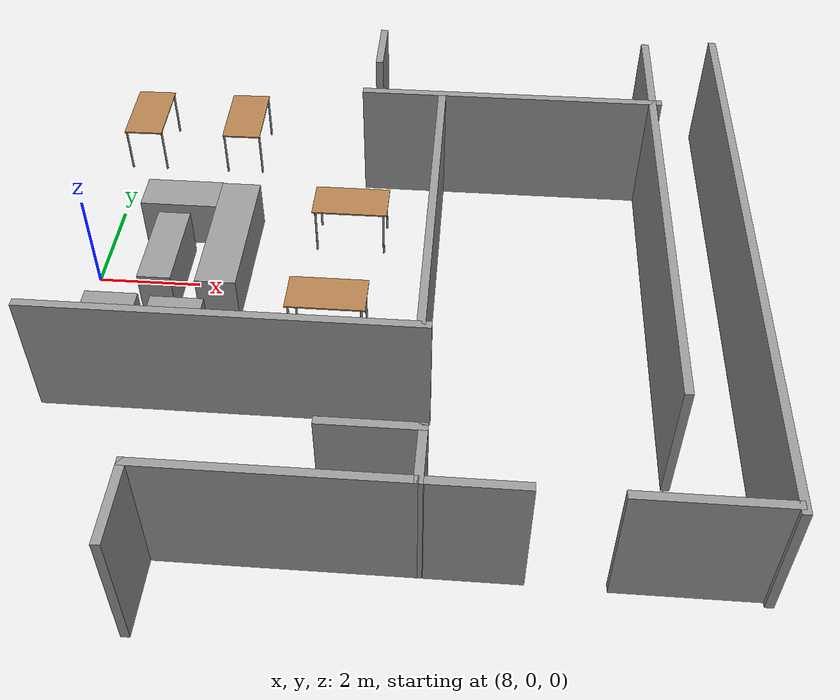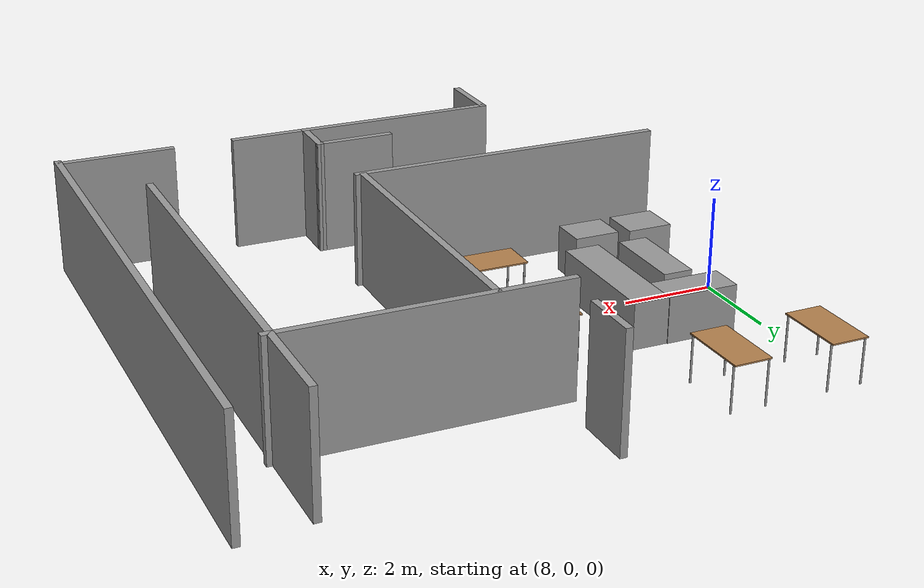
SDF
<sdf version="1.7">
 <model name="turtlebot3_world_V3">
  <link name="link_12">
   <inertial>
    <mass>0.805498</mass>
    <inertia>
     <ixx>0.110674</ixx>
     <ixy>0</ixy>
     <ixz>0</ixz>
     <iyy>0.13425</iyy>
     <iyz>0</iyz>
     <izz>0.110673</izz>
    </inertia>
   </inertial>
   <pose>9.96641 -1.75316 0.5 0 -0 0</pose>
   <visual name="visual">
    <geometry><box><size>1 0.805462 1</size></box></geometry>
    <material>
     <lighting>1</lighting>
     <script><uri>file://media/materials/scripts/gazebo.material</uri><name>Gazebo/Grey</name></script>
     <shader type="pixel"/>
    </material>
   </visual>
   <collision name="collision">
    <geometry><box><size>1 0.805462 1</size></box></geometry>
    <surface>
     <friction>
      <ode><mu>1</mu><mu2>1</mu2><fdir1>0 0 0</fdir1><slip1>0</slip1><slip2>0</slip2></ode>
      <torsional>
       <coefficient>1</coefficient>
       <patch_radius>0</patch_radius>
       <surface_radius>0</surface_radius>
       <use_patch_radius>1</use_patch_radius>
       <ode><slip>0</slip></ode>
      </torsional>
     </friction>
     <bounce><restitution_coefficient>0</restitution_coefficient><threshold>1e+06</threshold></bounce>
     <contact>
      <collide_without_contact>0</collide_without_contact>
      <collide_without_contact_bitmask>1</collide_without_contact_bitmask>
      <collide_bitmask>1</collide_bitmask>
      <ode>
       <soft_cfm>0</soft_cfm>
       <soft_erp>0.2</soft_erp>
       <kp>1e+13</kp>
       <kd>1</kd>
       <max_vel>0.01</max_vel>
       <min_depth>0</min_depth>
      </ode>
      <bullet>
       <split_impulse>1</split_impulse>
       <split_impulse_penetration_threshold>-0.01</split_impulse_penetration_threshold>
       <soft_cfm>0</soft_cfm>
       <soft_erp>0.2</soft_erp>
       <kp>1e+13</kp>
       <kd>1</kd>
      </bullet>
     </contact>
    </surface>
   </collision>
  </link>
  <link name="link_13">
   <inertial>
    <mass>0.865767</mass>
    <inertia>
     <ixx>0.125697</ixx>
     <ixy>0</ixy>
     <ixz>0</ixz>
     <iyy>0.141908</iyy>
     <iyz>0</iyz>
     <izz>0.128084</izz>
    </inertia>
   </inertial>
   <pose>8.71811 -1.73865 0.5 0 -0 0</pose>
   <visual name="visual">
    <geometry><box><size>1 0.880516 0.983322</size></box></geometry>
    <material>
     <lighting>1</lighting>
     <script><uri>file://media/materials/scripts/gazebo.material</uri><name>Gazebo/Grey</name></script>
     <shader type="pixel"/>
    </material>
   </visual>
   <collision name="collision">
    <geometry><box><size>1 0.880516 0.983322</size></box></geometry>
    <surface>
     <friction>
      <ode><mu>1</mu><mu2>1</mu2><fdir1>0 0 0</fdir1><slip1>0</slip1><slip2>0</slip2></ode>
      <torsional>
       <coefficient>1</coefficient>
       <patch_radius>0</patch_radius>
       <surface_radius>0</surface_radius>
       <use_patch_radius>1</use_patch_radius>
       <ode><slip>0</slip></ode>
      </torsional>
     </friction>
     <bounce><restitution_coefficient>0</restitution_coefficient><threshold>1e+06</threshold></bounce>
     <contact>
      <collide_without_contact>0</collide_without_contact>
      <collide_without_contact_bitmask>1</collide_without_contact_bitmask>
      <collide_bitmask>1</collide_bitmask>
      <ode>
       <soft_cfm>0</soft_cfm>
       <soft_erp>0.2</soft_erp>
       <kp>1e+13</kp>
       <kd>1</kd>
       <max_vel>0.01</max_vel>
       <min_depth>0</min_depth>
      </ode>
      <bullet>
       <split_impulse>1</split_impulse>
       <split_impulse_penetration_threshold>-0.01</split_impulse_penetration_threshold>
       <soft_cfm>0</soft_cfm>
       <soft_erp>0.2</soft_erp>
       <kp>1e+13</kp>
       <kd>1</kd>
      </bullet>
     </contact>
    </surface>
   </collision>
  </link>
  <link name="link_7">
   <inertial>
    <mass>2.23687</mass>
    <inertia><ixx>1.73409</ixx><ixy>0</ixy><ixz>0</ixz><iyy>0.29873</iyy><iyz>0</iyz><izz>1.66001</izz></inertia>
   </inertial>
   <pose>10.5817 0.539907 0.5 0 -0 0</pose>
   <visual name="visual">
    <geometry><box><size>0.77626 2.88145 1</size></box></geometry>
    <material>
     <lighting>1</lighting>
     <script><uri>file://media/materials/scripts/gazebo.material</uri><name>Gazebo/Grey</name></script>
     <shader type="pixel"/>
    </material>
   </visual>
   <collision name="collision">
    <geometry><box><size>0.77626 2.88145 1</size></box></geometry>
    <surface>
     <friction>
      <ode><mu>1</mu><mu2>1</mu2><fdir1>0 0 0</fdir1><slip1>0</slip1><slip2>0</slip2></ode>
      <torsional>
       <coefficient>1</coefficient>
       <patch_radius>0</patch_radius>
       <surface_radius>0</surface_radius>
       <use_patch_radius>1</use_patch_radius>
       <ode><slip>0</slip></ode>
      </torsional>
     </friction>
     <bounce><restitution_coefficient>0</restitution_coefficient><threshold>1e+06</threshold></bounce>
     <contact>
      <collide_without_contact>0</collide_without_contact>
      <collide_without_contact_bitmask>1</collide_without_contact_bitmask>
      <collide_bitmask>1</collide_bitmask>
      <ode>
       <soft_cfm>0</soft_cfm>
       <soft_erp>0.2</soft_erp>
       <kp>1e+13</kp>
       <kd>1</kd>
       <max_vel>0.01</max_vel>
       <min_depth>0</min_depth>
      </ode>
      <bullet>
       <split_impulse>1</split_impulse>
       <split_impulse_penetration_threshold>-0.01</split_impulse_penetration_threshold>
       <soft_cfm>0</soft_cfm>
       <soft_erp>0.2</soft_erp>
       <kp>1e+13</kp>
       <kd>1</kd>
      </bullet>
     </contact>
    </surface>
   </collision>
  </link>
  <link name="link_8">
   <inertial>
    <mass>1.16467</mass>
    <inertia>
     <ixx>0.153025</ixx>
     <ixy>0</ixy>
     <ixz>0</ixz>
     <iyy>0.325368</iyy>
     <iyz>0</iyz>
     <izz>0.284282</izz>
    </inertia>
   </inertial>
   <pose>9.42775 1.61838 0.5 0 -0 0</pose>
   <visual name="visual">
    <geometry><box><size>1.53375 0.75939 0.999999</size></box></geometry>
    <material>
     <lighting>1</lighting>
     <script><uri>file://media/materials/scripts/gazebo.material</uri><name>Gazebo/Grey</name></script>
     <shader type="pixel"/>
    </material>
   </visual>
   <collision name="collision">
    <geometry><box><size>1.53375 0.75939 0.999999</size></box></geometry>
    <surface>
     <friction>
      <ode><mu>1</mu><mu2>1</mu2><fdir1>0 0 0</fdir1><slip1>0</slip1><slip2>0</slip2></ode>
      <torsional>
       <coefficient>1</coefficient>
       <patch_radius>0</patch_radius>
       <surface_radius>0</surface_radius>
       <use_patch_radius>1</use_patch_radius>
       <ode><slip>0</slip></ode>
      </torsional>
     </friction>
     <bounce><restitution_coefficient>0</restitution_coefficient><threshold>1e+06</threshold></bounce>
     <contact>
      <collide_without_contact>0</collide_without_contact>
      <collide_without_contact_bitmask>1</collide_without_contact_bitmask>
      <collide_bitmask>1</collide_bitmask>
      <ode>
       <soft_cfm>0</soft_cfm>
       <soft_erp>0.2</soft_erp>
       <kp>1e+13</kp>
       <kd>1</kd>
       <max_vel>0.01</max_vel>
       <min_depth>0</min_depth>
      </ode>
      <bullet>
       <split_impulse>1</split_impulse>
       <split_impulse_penetration_threshold>-0.01</split_impulse_penetration_threshold>
       <soft_cfm>0</soft_cfm>
       <soft_erp>0.2</soft_erp>
       <kp>1e+13</kp>
       <kd>1</kd>
      </bullet>
     </contact>
    </surface>
   </collision>
  </link>
  <link name="link_9">
   <inertial>
    <mass>1.18157</mass>
    <inertia>
     <ixx>0.436927</ixx>
     <ixy>0</ixy>
     <ixz>0</ixz>
     <iyy>0.138453</iyy>
     <iyz>0</iyz>
     <izz>0.378452</izz>
    </inertia>
   </inertial>
   <pose>9.40553 0.06989 0.5 0 -0 0</pose>
   <visual name="visual">
    <geometry><box><size>0.637281 1.85403 1</size></box></geometry>
    <material>
     <lighting>1</lighting>
     <script><uri>file://media/materials/scripts/gazebo.material</uri><name>Gazebo/Grey</name></script>
     <shader type="pixel"/>
    </material>
   </visual>
   <collision name="collision">
    <geometry><box><size>0.637281 1.85403 1</size></box></geometry>
    <surface>
     <friction>
      <ode><mu>1</mu><mu2>1</mu2><fdir1>0 0 0</fdir1><slip1>0</slip1><slip2>0</slip2></ode>
      <torsional>
       <coefficient>1</coefficient>
       <patch_radius>0</patch_radius>
       <surface_radius>0</surface_radius>
       <use_patch_radius>1</use_patch_radius>
       <ode><slip>0</slip></ode>
      </torsional>
     </friction>
     <bounce><restitution_coefficient>0</restitution_coefficient><threshold>1e+06</threshold></bounce>
     <contact>
      <collide_without_contact>0</collide_without_contact>
      <collide_without_contact_bitmask>1</collide_without_contact_bitmask>
      <collide_bitmask>1</collide_bitmask>
      <ode>
       <soft_cfm>0</soft_cfm>
       <soft_erp>0.2</soft_erp>
       <kp>1e+13</kp>
       <kd>1</kd>
       <max_vel>0.01</max_vel>
       <min_depth>0</min_depth>
      </ode>
      <bullet>
       <split_impulse>1</split_impulse>
       <split_impulse_penetration_threshold>-0.01</split_impulse_penetration_threshold>
       <soft_cfm>0</soft_cfm>
       <soft_erp>0.2</soft_erp>
       <kp>1e+13</kp>
       <kd>1</kd>
      </bullet>
     </contact>
    </surface>
   </collision>
  </link>
  <link name="turtlebot3_world_1::The_Project_Hub_Building::Wall_11">
   <pose>11.2691 -3.12436 0 0 -0 0</pose>
   <visual name="Wall_11_Visual">
    <pose>0 0 1.25 0 -0 0</pose>
    <geometry><box><size>7 0.15 2.5</size></box></geometry>
    <material>
     <script><uri>file://media/materials/scripts/gazebo.material</uri><name>Gazebo/Grey</name></script>
     <ambient>1 1 1 1</ambient>
     <shader type="pixel"/>
    </material>
    <meta><layer>0</layer></meta>
   </visual>
   <collision name="Wall_11_Collision">
    <pose>0 0 1.25 0 -0 0</pose>
    <geometry><box><size>7 0.15 2.5</size></box></geometry>
    <surface>
     <friction>
      <ode><mu>1</mu><mu2>1</mu2><fdir1>0 0 0</fdir1><slip1>0</slip1><slip2>0</slip2></ode>
      <torsional>
       <coefficient>1</coefficient>
       <patch_radius>0</patch_radius>
       <surface_radius>0</surface_radius>
       <use_patch_radius>1</use_patch_radius>
       <ode><slip>0</slip></ode>
      </torsional>
     </friction>
     <bounce><restitution_coefficient>0</restitution_coefficient><threshold>1e+06</threshold></bounce>
     <contact>
      <collide_without_contact>0</collide_without_contact>
      <collide_without_contact_bitmask>1</collide_without_contact_bitmask>
      <collide_bitmask>1</collide_bitmask>
      <ode>
       <soft_cfm>0</soft_cfm>
       <soft_erp>0.2</soft_erp>
       <kp>1e+13</kp>
       <kd>1</kd>
       <max_vel>0.01</max_vel>
       <min_depth>0</min_depth>
      </ode>
      <bullet>
       <split_impulse>1</split_impulse>
       <split_impulse_penetration_threshold>-0.01</split_impulse_penetration_threshold>
       <soft_cfm>0</soft_cfm>
       <soft_erp>0.2</soft_erp>
       <kp>1e+13</kp>
       <kd>1</kd>
      </bullet>
     </contact>
    </surface>
   </collision>
  </link>
  <link name="turtlebot3_world_1::The_Project_Hub_Building::Wall_17">
   <pose>18.7934 0.573251 0 0 0 -1.5708</pose>
   <visual name="Wall_17_Visual">
    <pose>0 0 1.25 0 -0 0</pose>
    <geometry><box><size>9.75 0.15 2.5</size></box></geometry>
    <material>
     <script><uri>file://media/materials/scripts/gazebo.material</uri><name>Gazebo/Grey</name></script>
     <ambient>1 1 1 1</ambient>
     <shader type="pixel"/>
    </material>
    <meta><layer>0</layer></meta>
   </visual>
   <collision name="Wall_17_Collision">
    <pose>0 0 1.25 0 -0 0</pose>
    <geometry><box><size>9.75 0.15 2.5</size></box></geometry>
    <surface>
     <friction>
      <ode><mu>1</mu><mu2>1</mu2><fdir1>0 0 0</fdir1><slip1>0</slip1><slip2>0</slip2></ode>
      <torsional>
       <coefficient>1</coefficient>
       <patch_radius>0</patch_radius>
       <surface_radius>0</surface_radius>
       <use_patch_radius>1</use_patch_radius>
       <ode><slip>0</slip></ode>
      </torsional>
     </friction>
     <bounce><restitution_coefficient>0</restitution_coefficient><threshold>1e+06</threshold></bounce>
     <contact>
      <collide_without_contact>0</collide_without_contact>
      <collide_without_contact_bitmask>1</collide_without_contact_bitmask>
      <collide_bitmask>1</collide_bitmask>
      <ode>
       <soft_cfm>0</soft_cfm>
       <soft_erp>0.2</soft_erp>
       <kp>1e+13</kp>
       <kd>1</kd>
       <max_vel>0.01</max_vel>
       <min_depth>0</min_depth>
      </ode>
      <bullet>
       <split_impulse>1</split_impulse>
       <split_impulse_penetration_threshold>-0.01</split_impulse_penetration_threshold>
       <soft_cfm>0</soft_cfm>
       <soft_erp>0.2</soft_erp>
       <kp>1e+13</kp>
       <kd>1</kd>
      </bullet>
     </contact>
    </surface>
   </collision>
  </link>
  <link name="turtlebot3_world_1::The_Project_Hub_Building::Wall_19">
   <pose>15.9778 3.33917 0 0 -0 3.14159</pose>
   <visual name="Wall_19_Visual">
    <pose>0 0 1.25 0 -0 0</pose>
    <geometry><box><size>6 0.15 2.5</size></box></geometry>
    <material>
     <script><uri>file://media/materials/scripts/gazebo.material</uri><name>Gazebo/Grey</name></script>
     <ambient>1 1 1 1</ambient>
     <shader type="pixel"/>
    </material>
    <meta><layer>0</layer></meta>
   </visual>
   <collision name="Wall_19_Collision">
    <pose>0 0 1.25 0 -0 0</pose>
    <geometry><box><size>6 0.15 2.5</size></box></geometry>
    <surface>
     <friction>
      <ode><mu>1</mu><mu2>1</mu2><fdir1>0 0 0</fdir1><slip1>0</slip1><slip2>0</slip2></ode>
      <torsional>
       <coefficient>1</coefficient>
       <patch_radius>0</patch_radius>
       <surface_radius>0</surface_radius>
       <use_patch_radius>1</use_patch_radius>
       <ode><slip>0</slip></ode>
      </torsional>
     </friction>
     <bounce><restitution_coefficient>0</restitution_coefficient><threshold>1e+06</threshold></bounce>
     <contact>
      <collide_without_contact>0</collide_without_contact>
      <collide_without_contact_bitmask>1</collide_without_contact_bitmask>
      <collide_bitmask>1</collide_bitmask>
      <ode>
       <soft_cfm>0</soft_cfm>
       <soft_erp>0.2</soft_erp>
       <kp>1e+13</kp>
       <kd>1</kd>
       <max_vel>0.01</max_vel>
       <min_depth>0</min_depth>
      </ode>
      <bullet>
       <split_impulse>1</split_impulse>
       <split_impulse_penetration_threshold>-0.01</split_impulse_penetration_threshold>
       <soft_cfm>0</soft_cfm>
       <soft_erp>0.2</soft_erp>
       <kp>1e+13</kp>
       <kd>1</kd>
      </bullet>
     </contact>
    </surface>
   </collision>
  </link>
  <link name="turtlebot3_world_1::The_Project_Hub_Building::Wall_21">
   <pose>13.2161 4.97636 0 0 0 -1.5708</pose>
   <visual name="Wall_21_Visual">
    <pose>0 0 1.25 0 -0 0</pose>
    <geometry><box><size>1.25 0.15 2.5</size></box></geometry>
    <material>
     <script><uri>file://media/materials/scripts/gazebo.material</uri><name>Gazebo/Grey</name></script>
     <ambient>1 1 1 1</ambient>
     <shader type="pixel"/>
    </material>
    <meta><layer>0</layer></meta>
   </visual>
   <collision name="Wall_21_Collision">
    <pose>0 0 1.25 0 -0 0</pose>
    <geometry><box><size>1.25 0.15 2.5</size></box></geometry>
    <surface>
     <friction>
      <ode><mu>1</mu><mu2>1</mu2><fdir1>0 0 0</fdir1><slip1>0</slip1><slip2>0</slip2></ode>
      <torsional>
       <coefficient>1</coefficient>
       <patch_radius>0</patch_radius>
       <surface_radius>0</surface_radius>
       <use_patch_radius>1</use_patch_radius>
       <ode><slip>0</slip></ode>
      </torsional>
     </friction>
     <bounce><restitution_coefficient>0</restitution_coefficient><threshold>1e+06</threshold></bounce>
     <contact>
      <collide_without_contact>0</collide_without_contact>
      <collide_without_contact_bitmask>1</collide_without_contact_bitmask>
      <collide_bitmask>1</collide_bitmask>
      <ode>
       <soft_cfm>0</soft_cfm>
       <soft_erp>0.2</soft_erp>
       <kp>1e+13</kp>
       <kd>1</kd>
       <max_vel>0.01</max_vel>
       <min_depth>0</min_depth>
      </ode>
      <bullet>
       <split_impulse>1</split_impulse>
       <split_impulse_penetration_threshold>-0.01</split_impulse_penetration_threshold>
       <soft_cfm>0</soft_cfm>
       <soft_erp>0.2</soft_erp>
       <kp>1e+13</kp>
       <kd>1</kd>
      </bullet>
     </contact>
    </surface>
   </collision>
  </link>
  <link name="turtlebot3_world_1::The_Project_Hub_Building::Wall_23">
   <pose>14.5876 0.120351 0 0 0 -1.5708</pose>
   <visual name="Wall_23_Visual">
    <pose>0 0 1.25 0 -0 0</pose>
    <geometry><box><size>6.5 0.15 2.5</size></box></geometry>
    <material>
     <script><uri>file://media/materials/scripts/gazebo.material</uri><name>Gazebo/Grey</name></script>
     <ambient>1 1 1 1</ambient>
     <shader type="pixel"/>
    </material>
    <meta><layer>0</layer></meta>
   </visual>
   <collision name="Wall_23_Collision">
    <pose>0 0 1.25 0 -0 0</pose>
    <geometry><box><size>6.5 0.15 2.5</size></box></geometry>
    <surface>
     <friction>
      <ode><mu>1</mu><mu2>1</mu2><fdir1>0 0 0</fdir1><slip1>0</slip1><slip2>0</slip2></ode>
      <torsional>
       <coefficient>1</coefficient>
       <patch_radius>0</patch_radius>
       <surface_radius>0</surface_radius>
       <use_patch_radius>1</use_patch_radius>
       <ode><slip>0</slip></ode>
      </torsional>
     </friction>
     <bounce><restitution_coefficient>0</restitution_coefficient><threshold>1e+06</threshold></bounce>
     <contact>
      <collide_without_contact>0</collide_without_contact>
      <collide_without_contact_bitmask>1</collide_without_contact_bitmask>
      <collide_bitmask>1</collide_bitmask>
      <ode>
       <soft_cfm>0</soft_cfm>
       <soft_erp>0.2</soft_erp>
       <kp>1e+13</kp>
       <kd>1</kd>
       <max_vel>0.01</max_vel>
       <min_depth>0</min_depth>
      </ode>
      <bullet>
       <split_impulse>1</split_impulse>
       <split_impulse_penetration_threshold>-0.01</split_impulse_penetration_threshold>
       <soft_cfm>0</soft_cfm>
       <soft_erp>0.2</soft_erp>
       <kp>1e+13</kp>
       <kd>1</kd>
      </bullet>
     </contact>
    </surface>
   </collision>
  </link>
  <link name="turtlebot3_world_1::The_Project_Hub_Building::Wall_25">
   <pose>13.9651 -5.22669 0 0 -0 0</pose>
   <visual name="Wall_25_Visual">
    <pose>0 0 1.25 0 -0 0</pose>
    <geometry><box><size>1.75 0.15 2.5</size></box></geometry>
    <material>
     <script><uri>file://media/materials/scripts/gazebo.material</uri><name>Gazebo/Grey</name></script>
     <ambient>1 1 1 1</ambient>
     <shader type="pixel"/>
    </material>
    <meta><layer>0</layer></meta>
   </visual>
   <collision name="Wall_25_Collision">
    <pose>0 0 1.25 0 -0 0</pose>
    <geometry><box><size>1.75 0.15 2.5</size></box></geometry>
    <surface>
     <friction>
      <ode><mu>1</mu><mu2>1</mu2><fdir1>0 0 0</fdir1><slip1>0</slip1><slip2>0</slip2></ode>
      <torsional>
       <coefficient>1</coefficient>
       <patch_radius>0</patch_radius>
       <surface_radius>0</surface_radius>
       <use_patch_radius>1</use_patch_radius>
       <ode><slip>0</slip></ode>
      </torsional>
     </friction>
     <bounce><restitution_coefficient>0</restitution_coefficient><threshold>1e+06</threshold></bounce>
     <contact>
      <collide_without_contact>0</collide_without_contact>
      <collide_without_contact_bitmask>1</collide_without_contact_bitmask>
      <collide_bitmask>1</collide_bitmask>
      <ode>
       <soft_cfm>0</soft_cfm>
       <soft_erp>0.2</soft_erp>
       <kp>1e+13</kp>
       <kd>1</kd>
       <max_vel>0.01</max_vel>
       <min_depth>0</min_depth>
      </ode>
      <bullet>
       <split_impulse>1</split_impulse>
       <split_impulse_penetration_threshold>-0.01</split_impulse_penetration_threshold>
       <soft_cfm>0</soft_cfm>
       <soft_erp>0.2</soft_erp>
       <kp>1e+13</kp>
       <kd>1</kd>
      </bullet>
     </contact>
    </surface>
   </collision>
  </link>
  <link name="turtlebot3_world_1::The_Project_Hub_Building::Wall_26">
   <pose>14.7604 -5.71315 0 0 0 -1.58051</pose>
   <visual name="Wall_26_Visual">
    <pose>0 0 1.25 0 -0 0</pose>
    <geometry><box><size>1.12297 0.15 2.5</size></box></geometry>
    <material>
     <script><uri>file://media/materials/scripts/gazebo.material</uri><name>Gazebo/Grey</name></script>
     <ambient>1 1 1 1</ambient>
     <shader type="pixel"/>
    </material>
    <meta><layer>0</layer></meta>
   </visual>
   <collision name="Wall_26_Collision">
    <pose>0 0 1.25 0 -0 0</pose>
    <geometry><box><size>1.12297 0.15 2.5</size></box></geometry>
    <surface>
     <friction>
      <ode><mu>1</mu><mu2>1</mu2><fdir1>0 0 0</fdir1><slip1>0</slip1><slip2>0</slip2></ode>
      <torsional>
       <coefficient>1</coefficient>
       <patch_radius>0</patch_radius>
       <surface_radius>0</surface_radius>
       <use_patch_radius>1</use_patch_radius>
       <ode><slip>0</slip></ode>
      </torsional>
     </friction>
     <bounce><restitution_coefficient>0</restitution_coefficient><threshold>1e+06</threshold></bounce>
     <contact>
      <collide_without_contact>0</collide_without_contact>
      <collide_without_contact_bitmask>1</collide_without_contact_bitmask>
      <collide_bitmask>1</collide_bitmask>
      <ode>
       <soft_cfm>0</soft_cfm>
       <soft_erp>0.2</soft_erp>
       <kp>1e+13</kp>
       <kd>1</kd>
       <max_vel>0.01</max_vel>
       <min_depth>0</min_depth>
      </ode>
      <bullet>
       <split_impulse>1</split_impulse>
       <split_impulse_penetration_threshold>-0.01</split_impulse_penetration_threshold>
       <soft_cfm>0</soft_cfm>
       <soft_erp>0.2</soft_erp>
       <kp>1e+13</kp>
       <kd>1</kd>
      </bullet>
     </contact>
    </surface>
   </collision>
  </link>
  <link name="turtlebot3_world_1::The_Project_Hub_Building::Wall_27">
   <pose>15.5651 -6.19961 0 0 -0 0</pose>
   <visual name="Wall_27_Visual">
    <pose>0 0 1.25 0 -0 0</pose>
    <geometry><box><size>1.75 0.15 2.5</size></box></geometry>
    <material>
     <script><uri>file://media/materials/scripts/gazebo.material</uri><name>Gazebo/Grey</name></script>
     <ambient>1 1 1 1</ambient>
     <shader type="pixel"/>
    </material>
    <meta><layer>0</layer></meta>
   </visual>
   <collision name="Wall_27_Collision">
    <pose>0 0 1.25 0 -0 0</pose>
    <geometry><box><size>1.75 0.15 2.5</size></box></geometry>
    <surface>
     <friction>
      <ode><mu>1</mu><mu2>1</mu2><fdir1>0 0 0</fdir1><slip1>0</slip1><slip2>0</slip2></ode>
      <torsional>
       <coefficient>1</coefficient>
       <patch_radius>0</patch_radius>
       <surface_radius>0</surface_radius>
       <use_patch_radius>1</use_patch_radius>
       <ode><slip>0</slip></ode>
      </torsional>
     </friction>
     <bounce><restitution_coefficient>0</restitution_coefficient><threshold>1e+06</threshold></bounce>
     <contact>
      <collide_without_contact>0</collide_without_contact>
      <collide_without_contact_bitmask>1</collide_without_contact_bitmask>
      <collide_bitmask>1</collide_bitmask>
      <ode>
       <soft_cfm>0</soft_cfm>
       <soft_erp>0.2</soft_erp>
       <kp>1e+13</kp>
       <kd>1</kd>
       <max_vel>0.01</max_vel>
       <min_depth>0</min_depth>
      </ode>
      <bullet>
       <split_impulse>1</split_impulse>
       <split_impulse_penetration_threshold>-0.01</split_impulse_penetration_threshold>
       <soft_cfm>0</soft_cfm>
       <soft_erp>0.2</soft_erp>
       <kp>1e+13</kp>
       <kd>1</kd>
      </bullet>
     </contact>
    </surface>
   </collision>
  </link>
  <link name="turtlebot3_world_1::The_Project_Hub_Building::Wall_29">
   <pose>12.5901 -6.19961 0 0 -0 3.14159</pose>
   <visual name="Wall_29_Visual">
    <pose>0 0 1.25 0 -0 0</pose>
    <geometry><box><size>4.5 0.15 2.5</size></box></geometry>
    <material>
     <script><uri>file://media/materials/scripts/gazebo.material</uri><name>Gazebo/Grey</name></script>
     <ambient>1 1 1 1</ambient>
     <shader type="pixel"/>
    </material>
    <meta><layer>0</layer></meta>
   </visual>
   <collision name="Wall_29_Collision">
    <pose>0 0 1.25 0 -0 0</pose>
    <geometry><box><size>4.5 0.15 2.5</size></box></geometry>
    <surface>
     <friction>
      <ode><mu>1</mu><mu2>1</mu2><fdir1>0 0 0</fdir1><slip1>0</slip1><slip2>0</slip2></ode>
      <torsional>
       <coefficient>1</coefficient>
       <patch_radius>0</patch_radius>
       <surface_radius>0</surface_radius>
       <use_patch_radius>1</use_patch_radius>
       <ode><slip>0</slip></ode>
      </torsional>
     </friction>
     <bounce><restitution_coefficient>0</restitution_coefficient><threshold>1e+06</threshold></bounce>
     <contact>
      <collide_without_contact>0</collide_without_contact>
      <collide_without_contact_bitmask>1</collide_without_contact_bitmask>
      <collide_bitmask>1</collide_bitmask>
      <ode>
       <soft_cfm>0</soft_cfm>
       <soft_erp>0.2</soft_erp>
       <kp>1e+13</kp>
       <kd>1</kd>
       <max_vel>0.01</max_vel>
       <min_depth>0</min_depth>
      </ode>
      <bullet>
       <split_impulse>1</split_impulse>
       <split_impulse_penetration_threshold>-0.01</split_impulse_penetration_threshold>
       <soft_cfm>0</soft_cfm>
       <soft_erp>0.2</soft_erp>
       <kp>1e+13</kp>
       <kd>1</kd>
      </bullet>
     </contact>
    </surface>
   </collision>
  </link>
  <link name="turtlebot3_world_1::The_Project_Hub_Building::Wall_30">
   <pose>10.4151 -6.87461 0 0 0 -1.5708</pose>
   <visual name="Wall_30_Visual">
    <pose>0 0 1.25 0 -0 0</pose>
    <geometry><box><size>1.5 0.15 2.5</size></box></geometry>
    <material>
     <script><uri>file://media/materials/scripts/gazebo.material</uri><name>Gazebo/Grey</name></script>
     <ambient>1 1 1 1</ambient>
     <shader type="pixel"/>
    </material>
    <meta><layer>0</layer></meta>
   </visual>
   <collision name="Wall_30_Collision">
    <pose>0 0 1.25 0 -0 0</pose>
    <geometry><box><size>1.5 0.15 2.5</size></box></geometry>
    <surface>
     <friction>
      <ode><mu>1</mu><mu2>1</mu2><fdir1>0 0 0</fdir1><slip1>0</slip1><slip2>0</slip2></ode>
      <torsional>
       <coefficient>1</coefficient>
       <patch_radius>0</patch_radius>
       <surface_radius>0</surface_radius>
       <use_patch_radius>1</use_patch_radius>
       <ode><slip>0</slip></ode>
      </torsional>
     </friction>
     <bounce><restitution_coefficient>0</restitution_coefficient><threshold>1e+06</threshold></bounce>
     <contact>
      <collide_without_contact>0</collide_without_contact>
      <collide_without_contact_bitmask>1</collide_without_contact_bitmask>
      <collide_bitmask>1</collide_bitmask>
      <ode>
       <soft_cfm>0</soft_cfm>
       <soft_erp>0.2</soft_erp>
       <kp>1e+13</kp>
       <kd>1</kd>
       <max_vel>0.01</max_vel>
       <min_depth>0</min_depth>
      </ode>
      <bullet>
       <split_impulse>1</split_impulse>
       <split_impulse_penetration_threshold>-0.01</split_impulse_penetration_threshold>
       <soft_cfm>0</soft_cfm>
       <soft_erp>0.2</soft_erp>
       <kp>1e+13</kp>
       <kd>1</kd>
      </bullet>
     </contact>
    </surface>
   </collision>
  </link>
  <link name="turtlebot3_world_1::The_Project_Hub_Building::Wall_32">
   <pose>18.9849 -6.23199 0 0 -0 0</pose>
   <visual name="Wall_32_Visual">
    <pose>0 0 1.25 0 -0 0</pose>
    <geometry><box><size>2.5 0.15 2.5</size></box></geometry>
    <material>
     <script><uri>file://media/materials/scripts/gazebo.material</uri><name>Gazebo/Grey</name></script>
     <ambient>1 1 1 1</ambient>
     <shader type="pixel"/>
    </material>
    <meta><layer>0</layer></meta>
   </visual>
   <collision name="Wall_32_Collision">
    <pose>0 0 1.25 0 -0 0</pose>
    <geometry><box><size>2.5 0.15 2.5</size></box></geometry>
    <surface>
     <friction>
      <ode><mu>1</mu><mu2>1</mu2><fdir1>0 0 0</fdir1><slip1>0</slip1><slip2>0</slip2></ode>
      <torsional>
       <coefficient>1</coefficient>
       <patch_radius>0</patch_radius>
       <surface_radius>0</surface_radius>
       <use_patch_radius>1</use_patch_radius>
       <ode><slip>0</slip></ode>
      </torsional>
     </friction>
     <bounce><restitution_coefficient>0</restitution_coefficient><threshold>1e+06</threshold></bounce>
     <contact>
      <collide_without_contact>0</collide_without_contact>
      <collide_without_contact_bitmask>1</collide_without_contact_bitmask>
      <collide_bitmask>1</collide_bitmask>
      <ode>
       <soft_cfm>0</soft_cfm>
       <soft_erp>0.2</soft_erp>
       <kp>1e+13</kp>
       <kd>1</kd>
       <max_vel>0.01</max_vel>
       <min_depth>0</min_depth>
      </ode>
      <bullet>
       <split_impulse>1</split_impulse>
       <split_impulse_penetration_threshold>-0.01</split_impulse_penetration_threshold>
       <soft_cfm>0</soft_cfm>
       <soft_erp>0.2</soft_erp>
       <kp>1e+13</kp>
       <kd>1</kd>
      </bullet>
     </contact>
    </surface>
   </collision>
  </link>
  <link name="turtlebot3_world_1::The_Project_Hub_Building::Wall_34">
   <pose>20.2223 -0.389697 0 0 0 -1.5708</pose>
   <visual name="Wall_34_Visual">
    <pose>0 0 1.25 0 -0 0</pose>
    <geometry><box><size>12 0.15 2.5</size></box></geometry>
    <material>
     <script><uri>file://media/materials/scripts/gazebo.material</uri><name>Gazebo/Grey</name></script>
     <ambient>1 1 1 1</ambient>
     <shader type="pixel"/>
    </material>
    <meta><layer>0</layer></meta>
   </visual>
   <collision name="Wall_34_Collision">
    <pose>0 0 1.25 0 -0 0</pose>
    <geometry><box><size>12 0.15 2.5</size></box></geometry>
    <surface>
     <friction>
      <ode><mu>1</mu><mu2>1</mu2><fdir1>0 0 0</fdir1><slip1>0</slip1><slip2>0</slip2></ode>
      <torsional>
       <coefficient>1</coefficient>
       <patch_radius>0</patch_radius>
       <surface_radius>0</surface_radius>
       <use_patch_radius>1</use_patch_radius>
       <ode><slip>0</slip></ode>
      </torsional>
     </friction>
     <bounce><restitution_coefficient>0</restitution_coefficient><threshold>1e+06</threshold></bounce>
     <contact>
      <collide_without_contact>0</collide_without_contact>
      <collide_without_contact_bitmask>1</collide_without_contact_bitmask>
      <collide_bitmask>1</collide_bitmask>
      <ode>
       <soft_cfm>0</soft_cfm>
       <soft_erp>0.2</soft_erp>
       <kp>1e+13</kp>
       <kd>1</kd>
       <max_vel>0.01</max_vel>
       <min_depth>0</min_depth>
      </ode>
      <bullet>
       <split_impulse>1</split_impulse>
       <split_impulse_penetration_threshold>-0.01</split_impulse_penetration_threshold>
       <soft_cfm>0</soft_cfm>
       <soft_erp>0.2</soft_erp>
       <kp>1e+13</kp>
       <kd>1</kd>
      </bullet>
     </contact>
    </surface>
   </collision>
  </link>
  <model name="table_0_clone_6">
   <static>1</static>
   <link name="link">
    <collision name="surface">
     <pose>0 0 1 0 -0 0</pose>
     <geometry><box><size>1.5 0.8 0.03</size></box></geometry>
     <surface><friction><ode><mu>0.6</mu><mu2>0.6</mu2></ode></friction></surface>
    </collision>
    <visual name="visual1">
     <pose>0 0 1 0 -0 0</pose>
     <geometry><box><size>1.5 0.8 0.03</size></box></geometry>
     <material>
      <script><uri>file://media/materials/scripts/gazebo.material</uri><name>Gazebo/Wood</name></script>
     </material>
    </visual>
    <collision name="front_left_leg">
     <pose>0.68 0.38 0.5 0 -0 0</pose>
     <geometry><cylinder><radius>0.02</radius><length>1</length></cylinder></geometry>
    </collision>
    <visual name="front_left_leg">
     <pose>0.68 0.38 0.5 0 -0 0</pose>
     <geometry><cylinder><radius>0.02</radius><length>1</length></cylinder></geometry>
     <material>
      <script><uri>file://media/materials/scripts/gazebo.material</uri><name>Gazebo/Grey</name></script>
     </material>
    </visual>
    <collision name="front_right_leg">
     <pose>0.68 -0.38 0.5 0 -0 0</pose>
     <geometry><cylinder><radius>0.02</radius><length>1</length></cylinder></geometry>
    </collision>
    <visual name="front_right_leg">
     <pose>0.68 -0.38 0.5 0 -0 0</pose>
     <geometry><cylinder><radius>0.02</radius><length>1</length></cylinder></geometry>
     <material>
      <script><uri>file://media/materials/scripts/gazebo.material</uri><name>Gazebo/Grey</name></script>
     </material>
    </visual>
    <collision name="back_right_leg">
     <pose>-0.68 -0.38 0.5 0 -0 0</pose>
     <geometry><cylinder><radius>0.02</radius><length>1</length></cylinder></geometry>
    </collision>
    <visual name="back_right_leg">
     <pose>-0.68 -0.38 0.5 0 -0 0</pose>
     <geometry><cylinder><radius>0.02</radius><length>1</length></cylinder></geometry>
     <material>
      <script><uri>file://media/materials/scripts/gazebo.material</uri><name>Gazebo/Grey</name></script>
     </material>
    </visual>
    <collision name="back_left_leg">
     <pose>-0.68 0.38 0.5 0 -0 0</pose>
     <geometry><cylinder><radius>0.02</radius><length>1</length></cylinder></geometry>
    </collision>
    <visual name="back_left_leg">
     <pose>-0.68 0.38 0.5 0 -0 0</pose>
     <geometry><cylinder><radius>0.02</radius><length>1</length></cylinder></geometry>
     <material>
      <script><uri>file://media/materials/scripts/gazebo.material</uri><name>Gazebo/Grey</name></script>
     </material>
    </visual>
   </link>
   <pose>8.14985 4.27354 0 0 -0 1.58428</pose>
  </model>
  <model name="table_0_clone_7">
   <static>1</static>
   <link name="link">
    <collision name="surface">
     <pose>0 0 1 0 -0 0</pose>
     <geometry><box><size>1.5 0.8 0.03</size></box></geometry>
     <surface><friction><ode><mu>0.6</mu><mu2>0.6</mu2></ode></friction></surface>
    </collision>
    <visual name="visual1">
     <pose>0 0 1 0 -0 0</pose>
     <geometry><box><size>1.5 0.8 0.03</size></box></geometry>
     <material>
      <script><uri>file://media/materials/scripts/gazebo.material</uri><name>Gazebo/Wood</name></script>
     </material>
    </visual>
    <collision name="front_left_leg">
     <pose>0.68 0.38 0.5 0 -0 0</pose>
     <geometry><cylinder><radius>0.02</radius><length>1</length></cylinder></geometry>
    </collision>
    <visual name="front_left_leg">
     <pose>0.68 0.38 0.5 0 -0 0</pose>
     <geometry><cylinder><radius>0.02</radius><length>1</length></cylinder></geometry>
     <material>
      <script><uri>file://media/materials/scripts/gazebo.material</uri><name>Gazebo/Grey</name></script>
     </material>
    </visual>
    <collision name="front_right_leg">
     <pose>0.68 -0.38 0.5 0 -0 0</pose>
     <geometry><cylinder><radius>0.02</radius><length>1</length></cylinder></geometry>
    </collision>
    <visual name="front_right_leg">
     <pose>0.68 -0.38 0.5 0 -0 0</pose>
     <geometry><cylinder><radius>0.02</radius><length>1</length></cylinder></geometry>
     <material>
      <script><uri>file://media/materials/scripts/gazebo.material</uri><name>Gazebo/Grey</name></script>
     </material>
    </visual>
    <collision name="back_right_leg">
     <pose>-0.68 -0.38 0.5 0 -0 0</pose>
     <geometry><cylinder><radius>0.02</radius><length>1</length></cylinder></geometry>
    </collision>
    <visual name="back_right_leg">
     <pose>-0.68 -0.38 0.5 0 -0 0</pose>
     <geometry><cylinder><radius>0.02</radius><length>1</length></cylinder></geometry>
     <material>
      <script><uri>file://media/materials/scripts/gazebo.material</uri><name>Gazebo/Grey</name></script>
     </material>
    </visual>
    <collision name="back_left_leg">
     <pose>-0.68 0.38 0.5 0 -0 0</pose>
     <geometry><cylinder><radius>0.02</radius><length>1</length></cylinder></geometry>
    </collision>
    <visual name="back_left_leg">
     <pose>-0.68 0.38 0.5 0 -0 0</pose>
     <geometry><cylinder><radius>0.02</radius><length>1</length></cylinder></geometry>
     <material>
      <script><uri>file://media/materials/scripts/gazebo.material</uri><name>Gazebo/Grey</name></script>
     </material>
    </visual>
   </link>
   <pose>10.2737 4.29092 0 0 -0 1.58428</pose>
  </model>
  <model name="table_clone_10">
   <static>1</static>
   <link name="link">
    <collision name="surface">
     <pose>0 0 1 0 -0 0</pose>
     <geometry><box><size>1.5 0.8 0.03</size></box></geometry>
     <surface><friction><ode><mu>0.6</mu><mu2>0.6</mu2></ode></friction></surface>
    </collision>
    <visual name="visual1">
     <pose>0 0 1 0 -0 0</pose>
     <geometry><box><size>1.5 0.8 0.03</size></box></geometry>
     <material>
      <script><uri>file://media/materials/scripts/gazebo.material</uri><name>Gazebo/Wood</name></script>
     </material>
    </visual>
    <collision name="front_left_leg">
     <pose>0.68 0.38 0.5 0 -0 0</pose>
     <geometry><cylinder><radius>0.02</radius><length>1</length></cylinder></geometry>
    </collision>
    <visual name="front_left_leg">
     <pose>0.68 0.38 0.5 0 -0 0</pose>
     <geometry><cylinder><radius>0.02</radius><length>1</length></cylinder></geometry>
     <material>
      <script><uri>file://media/materials/scripts/gazebo.material</uri><name>Gazebo/Grey</name></script>
     </material>
    </visual>
    <collision name="front_right_leg">
     <pose>0.68 -0.38 0.5 0 -0 0</pose>
     <geometry><cylinder><radius>0.02</radius><length>1</length></cylinder></geometry>
    </collision>
    <visual name="front_right_leg">
     <pose>0.68 -0.38 0.5 0 -0 0</pose>
     <geometry><cylinder><radius>0.02</radius><length>1</length></cylinder></geometry>
     <material>
      <script><uri>file://media/materials/scripts/gazebo.material</uri><name>Gazebo/Grey</name></script>
     </material>
    </visual>
    <collision name="back_right_leg">
     <pose>-0.68 -0.38 0.5 0 -0 0</pose>
     <geometry><cylinder><radius>0.02</radius><length>1</length></cylinder></geometry>
    </collision>
    <visual name="back_right_leg">
     <pose>-0.68 -0.38 0.5 0 -0 0</pose>
     <geometry><cylinder><radius>0.02</radius><length>1</length></cylinder></geometry>
     <material>
      <script><uri>file://media/materials/scripts/gazebo.material</uri><name>Gazebo/Grey</name></script>
     </material>
    </visual>
    <collision name="back_left_leg">
     <pose>-0.68 0.38 0.5 0 -0 0</pose>
     <geometry><cylinder><radius>0.02</radius><length>1</length></cylinder></geometry>
    </collision>
    <visual name="back_left_leg">
     <pose>-0.68 0.38 0.5 0 -0 0</pose>
     <geometry><cylinder><radius>0.02</radius><length>1</length></cylinder></geometry>
     <material>
      <script><uri>file://media/materials/scripts/gazebo.material</uri><name>Gazebo/Grey</name></script>
     </material>
    </visual>
   </link>
   <pose>12.876 1.59917 0 0 -0 0</pose>
  </model>
  <model name="table_clone_11">
   <static>1</static>
   <link name="link">
    <collision name="surface">
     <pose>0 0 1 0 -0 0</pose>
     <geometry><box><size>1.5 0.8 0.03</size></box></geometry>
     <surface><friction><ode><mu>0.6</mu><mu2>0.6</mu2></ode></friction></surface>
    </collision>
    <visual name="visual1">
     <pose>0 0 1 0 -0 0</pose>
     <geometry><box><size>1.5 0.8 0.03</size></box></geometry>
     <material>
      <script><uri>file://media/materials/scripts/gazebo.material</uri><name>Gazebo/Wood</name></script>
     </material>
    </visual>
    <collision name="front_left_leg">
     <pose>0.68 0.38 0.5 0 -0 0</pose>
     <geometry><cylinder><radius>0.02</radius><length>1</length></cylinder></geometry>
    </collision>
    <visual name="front_left_leg">
     <pose>0.68 0.38 0.5 0 -0 0</pose>
     <geometry><cylinder><radius>0.02</radius><length>1</length></cylinder></geometry>
     <material>
      <script><uri>file://media/materials/scripts/gazebo.material</uri><name>Gazebo/Grey</name></script>
     </material>
    </visual>
    <collision name="front_right_leg">
     <pose>0.68 -0.38 0.5 0 -0 0</pose>
     <geometry><cylinder><radius>0.02</radius><length>1</length></cylinder></geometry>
    </collision>
    <visual name="front_right_leg">
     <pose>0.68 -0.38 0.5 0 -0 0</pose>
     <geometry><cylinder><radius>0.02</radius><length>1</length></cylinder></geometry>
     <material>
      <script><uri>file://media/materials/scripts/gazebo.material</uri><name>Gazebo/Grey</name></script>
     </material>
    </visual>
    <collision name="back_right_leg">
     <pose>-0.68 -0.38 0.5 0 -0 0</pose>
     <geometry><cylinder><radius>0.02</radius><length>1</length></cylinder></geometry>
    </collision>
    <visual name="back_right_leg">
     <pose>-0.68 -0.38 0.5 0 -0 0</pose>
     <geometry><cylinder><radius>0.02</radius><length>1</length></cylinder></geometry>
     <material>
      <script><uri>file://media/materials/scripts/gazebo.material</uri><name>Gazebo/Grey</name></script>
     </material>
    </visual>
    <collision name="back_left_leg">
     <pose>-0.68 0.38 0.5 0 -0 0</pose>
     <geometry><cylinder><radius>0.02</radius><length>1</length></cylinder></geometry>
    </collision>
    <visual name="back_left_leg">
     <pose>-0.68 0.38 0.5 0 -0 0</pose>
     <geometry><cylinder><radius>0.02</radius><length>1</length></cylinder></geometry>
     <material>
      <script><uri>file://media/materials/scripts/gazebo.material</uri><name>Gazebo/Grey</name></script>
     </material>
    </visual>
   </link>
   <pose>12.7141 -1.04981 0 0 -0 0</pose>
  </model>
  <static>1</static>
 </model>
</sdf>
